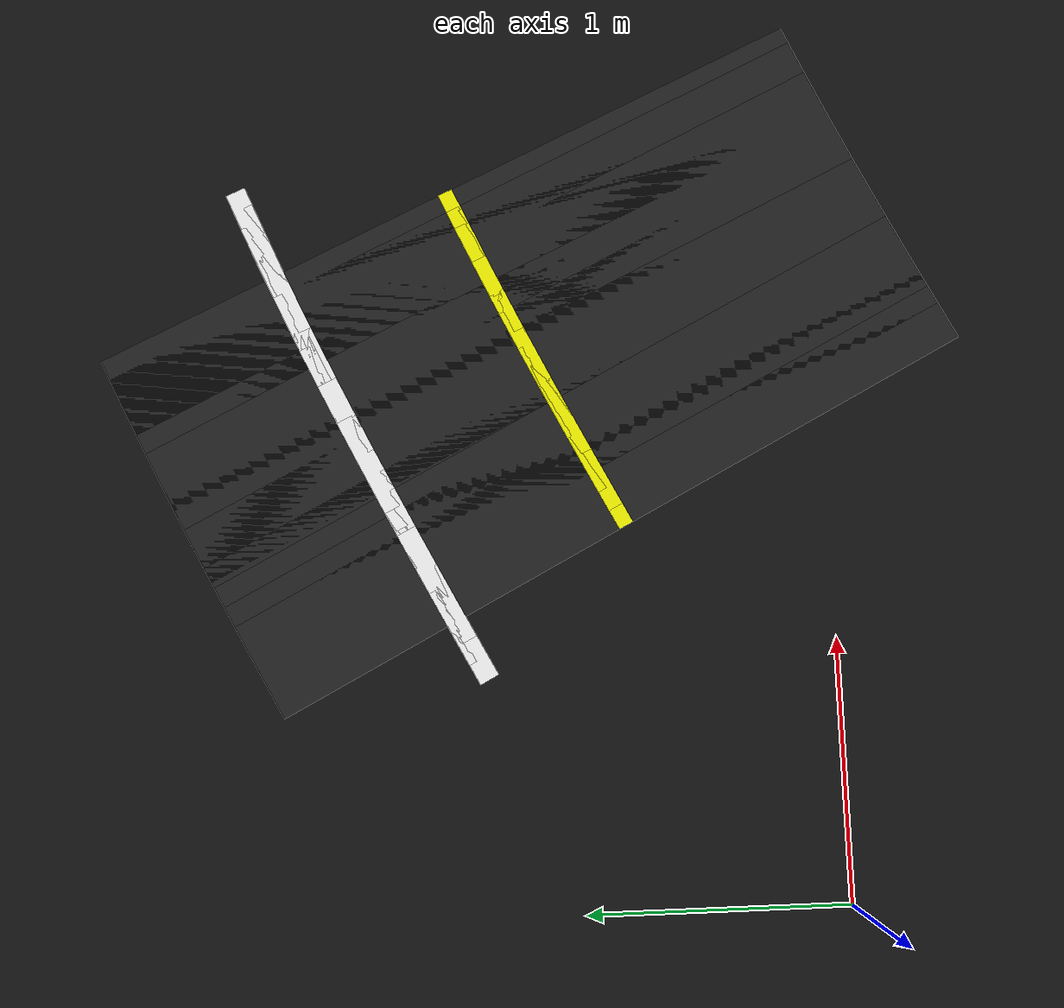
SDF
<sdf version="1.6">
 <world name="figure8_world">
  <model name="ground_plane">
   <static>true</static>
   <link name="link">
    <collision name="collision">
     <geometry><plane><normal>0 0 1</normal><size>120 120</size></plane></geometry>
    </collision>
    <visual name="visual">
     <geometry><plane><normal>0 0 1</normal><size>120 120</size></plane></geometry>
     <material><ambient>0.08 0.08 0.08 1</ambient><diffuse>0.08 0.08 0.08 1</diffuse></material>
    </visual>
   </link>
  </model>
  <model name="seg_02117">
   <static>true</static>
   <pose>1.0688 1.4243 0.0030 0 0 0.4818</pose>
   <link name="link">
    <collision name="collision"><geometry><box><size>0.4000 0.0800 0.002</size></box></geometry></collision>
    <visual name="visual">
     <geometry><box><size>0.4000 0.0800 0.002</size></box></geometry>
     <material><ambient>1 1 1 1</ambient><diffuse>1 1 1 1</diffuse></material>
    </visual>
   </link>
  </model>
  <model name="seg_02121">
   <static>true</static>
   <pose>1.1445 1.4638 0.0030 0 0 0.4799</pose>
   <link name="link">
    <collision name="collision"><geometry><box><size>0.4000 0.0800 0.002</size></box></geometry></collision>
    <visual name="visual">
     <geometry><box><size>0.4000 0.0800 0.002</size></box></geometry>
     <material><ambient>1 1 1 1</ambient><diffuse>1 1 1 1</diffuse></material>
    </visual>
   </link>
  </model>
  <model name="seg_02125">
   <static>true</static>
   <pose>1.2200 1.5029 0.0030 0 0 0.4779</pose>
   <link name="link">
    <collision name="collision"><geometry><box><size>0.4000 0.0800 0.002</size></box></geometry></collision>
    <visual name="visual">
     <geometry><box><size>0.4000 0.0800 0.002</size></box></geometry>
     <material><ambient>1 1 1 1</ambient><diffuse>1 1 1 1</diffuse></material>
    </visual>
   </link>
  </model>
  <model name="seg_02128">
   <static>true</static>
   <pose>1.6387 0.8749 0.0010 0 0 0.4757</pose>
   <link name="link">
    <collision name="collision"><geometry><box><size>0.4000 3.0000 0.002</size></box></geometry></collision>
    <visual name="visual">
     <geometry><box><size>0.4000 3.0000 0.002</size></box></geometry>
     <material><ambient>0.14 0.14 0.14 1</ambient><diffuse>0.14 0.14 0.14 1</diffuse></material>
    </visual>
   </link>
  </model>
  <model name="seg_02129">
   <static>true</static>
   <pose>1.2952 1.5416 0.0030 0 0 0.4757</pose>
   <link name="link">
    <collision name="collision"><geometry><box><size>0.4000 0.0800 0.002</size></box></geometry></collision>
    <visual name="visual">
     <geometry><box><size>0.4000 0.0800 0.002</size></box></geometry>
     <material><ambient>1 1 1 1</ambient><diffuse>1 1 1 1</diffuse></material>
    </visual>
   </link>
  </model>
  <model name="seg_02131">
   <static>true</static>
   <pose>1.6387 0.8749 0.0030 0 0 0.4757</pose>
   <link name="link">
    <collision name="collision"><geometry><box><size>0.4000 0.0600 0.002</size></box></geometry></collision>
    <visual name="visual">
     <geometry><box><size>0.4000 0.0600 0.002</size></box></geometry>
     <material><ambient>1 1 0 1</ambient><diffuse>1 1 0 1</diffuse></material>
    </visual>
   </link>
  </model>
  <model name="seg_02132">
   <static>true</static>
   <pose>1.7121 0.9125 0.0010 0 0 0.4734</pose>
   <link name="link">
    <collision name="collision"><geometry><box><size>0.4000 3.0000 0.002</size></box></geometry></collision>
    <visual name="visual">
     <geometry><box><size>0.4000 3.0000 0.002</size></box></geometry>
     <material><ambient>0.14 0.14 0.14 1</ambient><diffuse>0.14 0.14 0.14 1</diffuse></material>
    </visual>
   </link>
  </model>
  <model name="seg_02133">
   <static>true</static>
   <pose>1.3701 1.5800 0.0030 0 0 0.4734</pose>
   <link name="link">
    <collision name="collision"><geometry><box><size>0.4000 0.0800 0.002</size></box></geometry></collision>
    <visual name="visual">
     <geometry><box><size>0.4000 0.0800 0.002</size></box></geometry>
     <material><ambient>1 1 1 1</ambient><diffuse>1 1 1 1</diffuse></material>
    </visual>
   </link>
  </model>
  <model name="seg_02135">
   <static>true</static>
   <pose>1.7121 0.9125 0.0030 0 0 0.4734</pose>
   <link name="link">
    <collision name="collision"><geometry><box><size>0.4000 0.0600 0.002</size></box></geometry></collision>
    <visual name="visual">
     <geometry><box><size>0.4000 0.0600 0.002</size></box></geometry>
     <material><ambient>1 1 0 1</ambient><diffuse>1 1 0 1</diffuse></material>
    </visual>
   </link>
  </model>
  <model name="seg_02136">
   <static>true</static>
   <pose>1.7851 0.9497 0.0010 0 0 0.4709</pose>
   <link name="link">
    <collision name="collision"><geometry><box><size>0.4000 3.0000 0.002</size></box></geometry></collision>
    <visual name="visual">
     <geometry><box><size>0.4000 3.0000 0.002</size></box></geometry>
     <material><ambient>0.14 0.14 0.14 1</ambient><diffuse>0.14 0.14 0.14 1</diffuse></material>
    </visual>
   </link>
  </model>
  <model name="seg_02137">
   <static>true</static>
   <pose>1.4448 1.6180 0.0030 0 0 0.4709</pose>
   <link name="link">
    <collision name="collision"><geometry><box><size>0.4000 0.0800 0.002</size></box></geometry></collision>
    <visual name="visual">
     <geometry><box><size>0.4000 0.0800 0.002</size></box></geometry>
     <material><ambient>1 1 1 1</ambient><diffuse>1 1 1 1</diffuse></material>
    </visual>
   </link>
  </model>
  <model name="seg_02139">
   <static>true</static>
   <pose>1.7851 0.9497 0.0030 0 0 0.4709</pose>
   <link name="link">
    <collision name="collision"><geometry><box><size>0.4000 0.0600 0.002</size></box></geometry></collision>
    <visual name="visual">
     <geometry><box><size>0.4000 0.0600 0.002</size></box></geometry>
     <material><ambient>1 1 0 1</ambient><diffuse>1 1 0 1</diffuse></material>
    </visual>
   </link>
  </model>
  <model name="seg_02140">
   <static>true</static>
   <pose>1.8577 0.9864 0.0010 0 0 0.4684</pose>
   <link name="link">
    <collision name="collision"><geometry><box><size>0.4000 3.0000 0.002</size></box></geometry></collision>
    <visual name="visual">
     <geometry><box><size>0.4000 3.0000 0.002</size></box></geometry>
     <material><ambient>0.14 0.14 0.14 1</ambient><diffuse>0.14 0.14 0.14 1</diffuse></material>
    </visual>
   </link>
  </model>
  <model name="seg_02141">
   <static>true</static>
   <pose>1.5191 1.6556 0.0030 0 0 0.4684</pose>
   <link name="link">
    <collision name="collision"><geometry><box><size>0.4000 0.0800 0.002</size></box></geometry></collision>
    <visual name="visual">
     <geometry><box><size>0.4000 0.0800 0.002</size></box></geometry>
     <material><ambient>1 1 1 1</ambient><diffuse>1 1 1 1</diffuse></material>
    </visual>
   </link>
  </model>
  <model name="seg_02143">
   <static>true</static>
   <pose>1.8577 0.9864 0.0030 0 0 0.4684</pose>
   <link name="link">
    <collision name="collision"><geometry><box><size>0.4000 0.0600 0.002</size></box></geometry></collision>
    <visual name="visual">
     <geometry><box><size>0.4000 0.0600 0.002</size></box></geometry>
     <material><ambient>1 1 0 1</ambient><diffuse>1 1 0 1</diffuse></material>
    </visual>
   </link>
  </model>
  <model name="seg_02144">
   <static>true</static>
   <pose>1.9299 1.0227 0.0010 0 0 0.4656</pose>
   <link name="link">
    <collision name="collision"><geometry><box><size>0.4000 3.0000 0.002</size></box></geometry></collision>
    <visual name="visual">
     <geometry><box><size>0.4000 3.0000 0.002</size></box></geometry>
     <material><ambient>0.14 0.14 0.14 1</ambient><diffuse>0.14 0.14 0.14 1</diffuse></material>
    </visual>
   </link>
  </model>
  <model name="seg_02145">
   <static>true</static>
   <pose>1.5932 1.6928 0.0030 0 0 0.4656</pose>
   <link name="link">
    <collision name="collision"><geometry><box><size>0.4000 0.0800 0.002</size></box></geometry></collision>
    <visual name="visual">
     <geometry><box><size>0.4000 0.0800 0.002</size></box></geometry>
     <material><ambient>1 1 1 1</ambient><diffuse>1 1 1 1</diffuse></material>
    </visual>
   </link>
  </model>
  <model name="seg_02147">
   <static>true</static>
   <pose>1.9299 1.0227 0.0030 0 0 0.4656</pose>
   <link name="link">
    <collision name="collision"><geometry><box><size>0.4000 0.0600 0.002</size></box></geometry></collision>
    <visual name="visual">
     <geometry><box><size>0.4000 0.0600 0.002</size></box></geometry>
     <material><ambient>1 1 0 1</ambient><diffuse>1 1 0 1</diffuse></material>
    </visual>
   </link>
  </model>
  <model name="seg_02148">
   <static>true</static>
   <pose>2.0017 1.0585 0.0010 0 0 0.4627</pose>
   <link name="link">
    <collision name="collision"><geometry><box><size>0.4000 3.0000 0.002</size></box></geometry></collision>
    <visual name="visual">
     <geometry><box><size>0.4000 3.0000 0.002</size></box></geometry>
     <material><ambient>0.14 0.14 0.14 1</ambient><diffuse>0.14 0.14 0.14 1</diffuse></material>
    </visual>
   </link>
  </model>
  <model name="seg_02149">
   <static>true</static>
   <pose>1.6669 1.7296 0.0030 0 0 0.4627</pose>
   <link name="link">
    <collision name="collision"><geometry><box><size>0.4000 0.0800 0.002</size></box></geometry></collision>
    <visual name="visual">
     <geometry><box><size>0.4000 0.0800 0.002</size></box></geometry>
     <material><ambient>1 1 1 1</ambient><diffuse>1 1 1 1</diffuse></material>
    </visual>
   </link>
  </model>
  <model name="seg_02151">
   <static>true</static>
   <pose>2.0017 1.0585 0.0030 0 0 0.4627</pose>
   <link name="link">
    <collision name="collision"><geometry><box><size>0.4000 0.0600 0.002</size></box></geometry></collision>
    <visual name="visual">
     <geometry><box><size>0.4000 0.0600 0.002</size></box></geometry>
     <material><ambient>1 1 0 1</ambient><diffuse>1 1 0 1</diffuse></material>
    </visual>
   </link>
  </model>
  <model name="seg_02152">
   <static>true</static>
   <pose>2.0730 1.0938 0.0010 0 0 0.4597</pose>
   <link name="link">
    <collision name="collision"><geometry><box><size>0.4000 3.0000 0.002</size></box></geometry></collision>
    <visual name="visual">
     <geometry><box><size>0.4000 3.0000 0.002</size></box></geometry>
     <material><ambient>0.14 0.14 0.14 1</ambient><diffuse>0.14 0.14 0.14 1</diffuse></material>
    </visual>
   </link>
  </model>
  <model name="seg_02153">
   <static>true</static>
   <pose>1.7403 1.7660 0.0030 0 0 0.4597</pose>
   <link name="link">
    <collision name="collision"><geometry><box><size>0.4000 0.0800 0.002</size></box></geometry></collision>
    <visual name="visual">
     <geometry><box><size>0.4000 0.0800 0.002</size></box></geometry>
     <material><ambient>1 1 1 1</ambient><diffuse>1 1 1 1</diffuse></material>
    </visual>
   </link>
  </model>
  <model name="seg_02155">
   <static>true</static>
   <pose>2.0730 1.0938 0.0030 0 0 0.4597</pose>
   <link name="link">
    <collision name="collision"><geometry><box><size>0.4000 0.0600 0.002</size></box></geometry></collision>
    <visual name="visual">
     <geometry><box><size>0.4000 0.0600 0.002</size></box></geometry>
     <material><ambient>1 1 0 1</ambient><diffuse>1 1 0 1</diffuse></material>
    </visual>
   </link>
  </model>
  <model name="seg_02156">
   <static>true</static>
   <pose>2.1439 1.1286 0.0010 0 0 0.4565</pose>
   <link name="link">
    <collision name="collision"><geometry><box><size>0.4000 3.0000 0.002</size></box></geometry></collision>
    <visual name="visual">
     <geometry><box><size>0.4000 3.0000 0.002</size></box></geometry>
     <material><ambient>0.14 0.14 0.14 1</ambient><diffuse>0.14 0.14 0.14 1</diffuse></material>
    </visual>
   </link>
  </model>
  <model name="seg_02157">
   <static>true</static>
   <pose>1.8133 1.8018 0.0030 0 0 0.4565</pose>
   <link name="link">
    <collision name="collision"><geometry><box><size>0.4000 0.0800 0.002</size></box></geometry></collision>
    <visual name="visual">
     <geometry><box><size>0.4000 0.0800 0.002</size></box></geometry>
     <material><ambient>1 1 1 1</ambient><diffuse>1 1 1 1</diffuse></material>
    </visual>
   </link>
  </model>
  <model name="seg_02159">
   <static>true</static>
   <pose>2.1439 1.1286 0.0030 0 0 0.4565</pose>
   <link name="link">
    <collision name="collision"><geometry><box><size>0.4000 0.0600 0.002</size></box></geometry></collision>
    <visual name="visual">
     <geometry><box><size>0.4000 0.0600 0.002</size></box></geometry>
     <material><ambient>1 1 0 1</ambient><diffuse>1 1 0 1</diffuse></material>
    </visual>
   </link>
  </model>
  <model name="seg_02160">
   <static>true</static>
   <pose>2.2142 1.1629 0.0010 0 0 0.4531</pose>
   <link name="link">
    <collision name="collision"><geometry><box><size>0.4000 3.0000 0.002</size></box></geometry></collision>
    <visual name="visual">
     <geometry><box><size>0.4000 3.0000 0.002</size></box></geometry>
     <material><ambient>0.14 0.14 0.14 1</ambient><diffuse>0.14 0.14 0.14 1</diffuse></material>
    </visual>
   </link>
  </model>
  <model name="seg_02161">
   <static>true</static>
   <pose>1.8859 1.8372 0.0030 0 0 0.4531</pose>
   <link name="link">
    <collision name="collision"><geometry><box><size>0.4000 0.0800 0.002</size></box></geometry></collision>
    <visual name="visual">
     <geometry><box><size>0.4000 0.0800 0.002</size></box></geometry>
     <material><ambient>1 1 1 1</ambient><diffuse>1 1 1 1</diffuse></material>
    </visual>
   </link>
  </model>
  <model name="seg_02163">
   <static>true</static>
   <pose>2.2142 1.1629 0.0030 0 0 0.4531</pose>
   <link name="link">
    <collision name="collision"><geometry><box><size>0.4000 0.0600 0.002</size></box></geometry></collision>
    <visual name="visual">
     <geometry><box><size>0.4000 0.0600 0.002</size></box></geometry>
     <material><ambient>1 1 0 1</ambient><diffuse>1 1 0 1</diffuse></material>
    </visual>
   </link>
  </model>
  <model name="seg_02164">
   <static>true</static>
   <pose>2.2841 1.1966 0.0010 0 0 0.4495</pose>
   <link name="link">
    <collision name="collision"><geometry><box><size>0.4000 3.0000 0.002</size></box></geometry></collision>
    <visual name="visual">
     <geometry><box><size>0.4000 3.0000 0.002</size></box></geometry>
     <material><ambient>0.14 0.14 0.14 1</ambient><diffuse>0.14 0.14 0.14 1</diffuse></material>
    </visual>
   </link>
  </model>
  <model name="seg_02165">
   <static>true</static>
   <pose>1.9582 1.8721 0.0030 0 0 0.4495</pose>
   <link name="link">
    <collision name="collision"><geometry><box><size>0.4000 0.0800 0.002</size></box></geometry></collision>
    <visual name="visual">
     <geometry><box><size>0.4000 0.0800 0.002</size></box></geometry>
     <material><ambient>1 1 1 1</ambient><diffuse>1 1 1 1</diffuse></material>
    </visual>
   </link>
  </model>
  <model name="seg_02167">
   <static>true</static>
   <pose>2.2841 1.1966 0.0030 0 0 0.4495</pose>
   <link name="link">
    <collision name="collision"><geometry><box><size>0.4000 0.0600 0.002</size></box></geometry></collision>
    <visual name="visual">
     <geometry><box><size>0.4000 0.0600 0.002</size></box></geometry>
     <material><ambient>1 1 0 1</ambient><diffuse>1 1 0 1</diffuse></material>
    </visual>
   </link>
  </model>
  <model name="seg_02168">
   <static>true</static>
   <pose>2.3535 1.2297 0.0010 0 0 0.4458</pose>
   <link name="link">
    <collision name="collision"><geometry><box><size>0.4000 3.0000 0.002</size></box></geometry></collision>
    <visual name="visual">
     <geometry><box><size>0.4000 3.0000 0.002</size></box></geometry>
     <material><ambient>0.14 0.14 0.14 1</ambient><diffuse>0.14 0.14 0.14 1</diffuse></material>
    </visual>
   </link>
  </model>
  <model name="seg_02169">
   <static>true</static>
   <pose>2.0301 1.9064 0.0030 0 0 0.4458</pose>
   <link name="link">
    <collision name="collision"><geometry><box><size>0.4000 0.0800 0.002</size></box></geometry></collision>
    <visual name="visual">
     <geometry><box><size>0.4000 0.0800 0.002</size></box></geometry>
     <material><ambient>1 1 1 1</ambient><diffuse>1 1 1 1</diffuse></material>
    </visual>
   </link>
  </model>
  <model name="seg_02171">
   <static>true</static>
   <pose>2.3535 1.2297 0.0030 0 0 0.4458</pose>
   <link name="link">
    <collision name="collision"><geometry><box><size>0.4000 0.0600 0.002</size></box></geometry></collision>
    <visual name="visual">
     <geometry><box><size>0.4000 0.0600 0.002</size></box></geometry>
     <material><ambient>1 1 0 1</ambient><diffuse>1 1 0 1</diffuse></material>
    </visual>
   </link>
  </model>
  <model name="seg_02172">
   <static>true</static>
   <pose>2.4223 1.2623 0.0010 0 0 0.4418</pose>
   <link name="link">
    <collision name="collision"><geometry><box><size>0.4000 3.0000 0.002</size></box></geometry></collision>
    <visual name="visual">
     <geometry><box><size>0.4000 3.0000 0.002</size></box></geometry>
     <material><ambient>0.14 0.14 0.14 1</ambient><diffuse>0.14 0.14 0.14 1</diffuse></material>
    </visual>
   </link>
  </model>
  <model name="seg_02173">
   <static>true</static>
   <pose>2.1016 1.9402 0.0030 0 0 0.4418</pose>
   <link name="link">
    <collision name="collision"><geometry><box><size>0.4000 0.0800 0.002</size></box></geometry></collision>
    <visual name="visual">
     <geometry><box><size>0.4000 0.0800 0.002</size></box></geometry>
     <material><ambient>1 1 1 1</ambient><diffuse>1 1 1 1</diffuse></material>
    </visual>
   </link>
  </model>
  <model name="seg_02175">
   <static>true</static>
   <pose>2.4223 1.2623 0.0030 0 0 0.4418</pose>
   <link name="link">
    <collision name="collision"><geometry><box><size>0.4000 0.0600 0.002</size></box></geometry></collision>
    <visual name="visual">
     <geometry><box><size>0.4000 0.0600 0.002</size></box></geometry>
     <material><ambient>1 1 0 1</ambient><diffuse>1 1 0 1</diffuse></material>
    </visual>
   </link>
  </model>
  <model name="seg_02176">
   <static>true</static>
   <pose>2.4905 1.2942 0.0010 0 0 0.4376</pose>
   <link name="link">
    <collision name="collision"><geometry><box><size>0.4000 3.0000 0.002</size></box></geometry></collision>
    <visual name="visual">
     <geometry><box><size>0.4000 3.0000 0.002</size></box></geometry>
     <material><ambient>0.14 0.14 0.14 1</ambient><diffuse>0.14 0.14 0.14 1</diffuse></material>
    </visual>
   </link>
  </model>
  <model name="seg_02177">
   <static>true</static>
   <pose>2.1727 1.9735 0.0030 0 0 0.4376</pose>
   <link name="link">
    <collision name="collision"><geometry><box><size>0.4000 0.0800 0.002</size></box></geometry></collision>
    <visual name="visual">
     <geometry><box><size>0.4000 0.0800 0.002</size></box></geometry>
     <material><ambient>1 1 1 1</ambient><diffuse>1 1 1 1</diffuse></material>
    </visual>
   </link>
  </model>
  <model name="seg_02179">
   <static>true</static>
   <pose>2.4905 1.2942 0.0030 0 0 0.4376</pose>
   <link name="link">
    <collision name="collision"><geometry><box><size>0.4000 0.0600 0.002</size></box></geometry></collision>
    <visual name="visual">
     <geometry><box><size>0.4000 0.0600 0.002</size></box></geometry>
     <material><ambient>1 1 0 1</ambient><diffuse>1 1 0 1</diffuse></material>
    </visual>
   </link>
  </model>
  <model name="seg_02180">
   <static>true</static>
   <pose>2.5582 1.3255 0.0010 0 0 0.4333</pose>
   <link name="link">
    <collision name="collision"><geometry><box><size>0.4000 3.0000 0.002</size></box></geometry></collision>
    <visual name="visual">
     <geometry><box><size>0.4000 3.0000 0.002</size></box></geometry>
     <material><ambient>0.14 0.14 0.14 1</ambient><diffuse>0.14 0.14 0.14 1</diffuse></material>
    </visual>
   </link>
  </model>
  <model name="seg_02181">
   <static>true</static>
   <pose>2.2433 2.0062 0.0030 0 0 0.4333</pose>
   <link name="link">
    <collision name="collision"><geometry><box><size>0.4000 0.0800 0.002</size></box></geometry></collision>
    <visual name="visual">
     <geometry><box><size>0.4000 0.0800 0.002</size></box></geometry>
     <material><ambient>1 1 1 1</ambient><diffuse>1 1 1 1</diffuse></material>
    </visual>
   </link>
  </model>
  <model name="seg_02183">
   <static>true</static>
   <pose>2.5582 1.3255 0.0030 0 0 0.4333</pose>
   <link name="link">
    <collision name="collision"><geometry><box><size>0.4000 0.0600 0.002</size></box></geometry></collision>
    <visual name="visual">
     <geometry><box><size>0.4000 0.0600 0.002</size></box></geometry>
     <material><ambient>1 1 0 1</ambient><diffuse>1 1 0 1</diffuse></material>
    </visual>
   </link>
  </model>
  <model name="seg_02184">
   <static>true</static>
   <pose>2.6253 1.3562 0.0010 0 0 0.4287</pose>
   <link name="link">
    <collision name="collision"><geometry><box><size>0.4000 3.0000 0.002</size></box></geometry></collision>
    <visual name="visual">
     <geometry><box><size>0.4000 3.0000 0.002</size></box></geometry>
     <material><ambient>0.14 0.14 0.14 1</ambient><diffuse>0.14 0.14 0.14 1</diffuse></material>
    </visual>
   </link>
  </model>
  <model name="seg_02185">
   <static>true</static>
   <pose>2.3136 2.0383 0.0030 0 0 0.4287</pose>
   <link name="link">
    <collision name="collision"><geometry><box><size>0.4000 0.0800 0.002</size></box></geometry></collision>
    <visual name="visual">
     <geometry><box><size>0.4000 0.0800 0.002</size></box></geometry>
     <material><ambient>1 1 1 1</ambient><diffuse>1 1 1 1</diffuse></material>
    </visual>
   </link>
  </model>
  <model name="seg_02187">
   <static>true</static>
   <pose>2.6253 1.3562 0.0030 0 0 0.4287</pose>
   <link name="link">
    <collision name="collision"><geometry><box><size>0.4000 0.0600 0.002</size></box></geometry></collision>
    <visual name="visual">
     <geometry><box><size>0.4000 0.0600 0.002</size></box></geometry>
     <material><ambient>1 1 0 1</ambient><diffuse>1 1 0 1</diffuse></material>
    </visual>
   </link>
  </model>
  <model name="seg_02189">
   <static>true</static>
   <pose>2.3834 2.0698 0.0030 0 0 0.4238</pose>
   <link name="link">
    <collision name="collision"><geometry><box><size>0.4000 0.0800 0.002</size></box></geometry></collision>
    <visual name="visual">
     <geometry><box><size>0.4000 0.0800 0.002</size></box></geometry>
     <material><ambient>1 1 1 1</ambient><diffuse>1 1 1 1</diffuse></material>
    </visual>
   </link>
  </model>
  <model name="seg_02193">
   <static>true</static>
   <pose>2.4528 2.1007 0.0030 0 0 0.4187</pose>
   <link name="link">
    <collision name="collision"><geometry><box><size>0.4000 0.0800 0.002</size></box></geometry></collision>
    <visual name="visual">
     <geometry><box><size>0.4000 0.0800 0.002</size></box></geometry>
     <material><ambient>1 1 1 1</ambient><diffuse>1 1 1 1</diffuse></material>
    </visual>
   </link>
  </model>
  <model name="seg_02197">
   <static>true</static>
   <pose>2.5217 2.1309 0.0030 0 0 0.4134</pose>
   <link name="link">
    <collision name="collision"><geometry><box><size>0.4000 0.0800 0.002</size></box></geometry></collision>
    <visual name="visual">
     <geometry><box><size>0.4000 0.0800 0.002</size></box></geometry>
     <material><ambient>1 1 1 1</ambient><diffuse>1 1 1 1</diffuse></material>
    </visual>
   </link>
  </model>
  <model name="seg_02201">
   <static>true</static>
   <pose>2.5901 2.1605 0.0030 0 0 0.4077</pose>
   <link name="link">
    <collision name="collision"><geometry><box><size>0.4000 0.0800 0.002</size></box></geometry></collision>
    <visual name="visual">
     <geometry><box><size>0.4000 0.0800 0.002</size></box></geometry>
     <material><ambient>1 1 1 1</ambient><diffuse>1 1 1 1</diffuse></material>
    </visual>
   </link>
  </model>
  <model name="seg_02205">
   <static>true</static>
   <pose>2.6581 2.1894 0.0030 0 0 0.4018</pose>
   <link name="link">
    <collision name="collision"><geometry><box><size>0.4000 0.0800 0.002</size></box></geometry></collision>
    <visual name="visual">
     <geometry><box><size>0.4000 0.0800 0.002</size></box></geometry>
     <material><ambient>1 1 1 1</ambient><diffuse>1 1 1 1</diffuse></material>
    </visual>
   </link>
  </model>
 </world>
</sdf>
